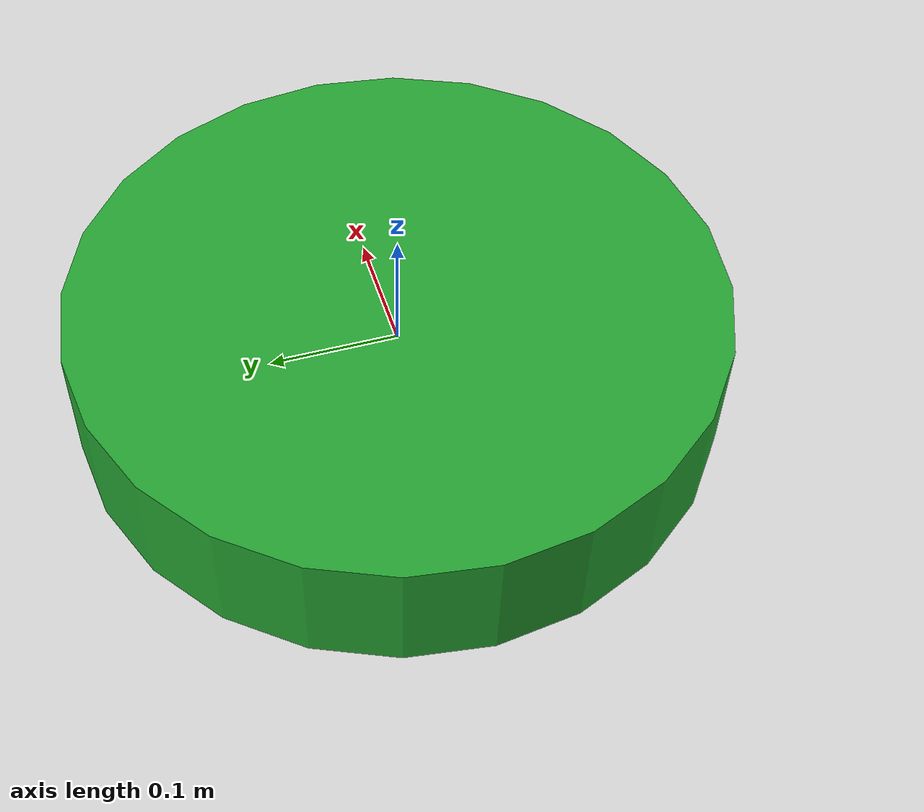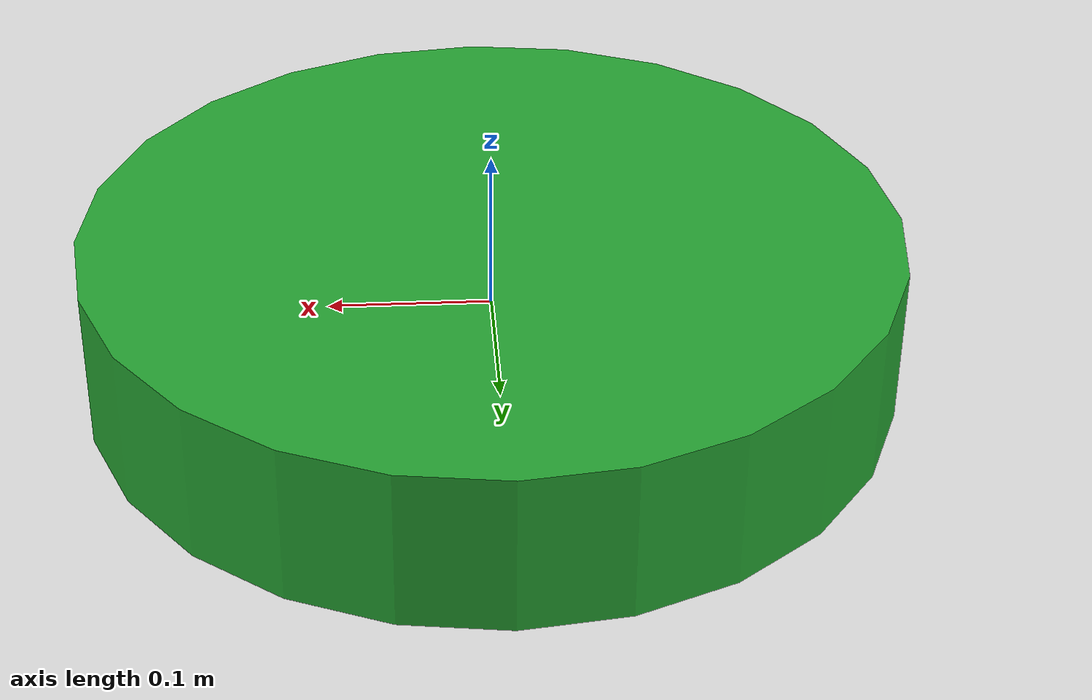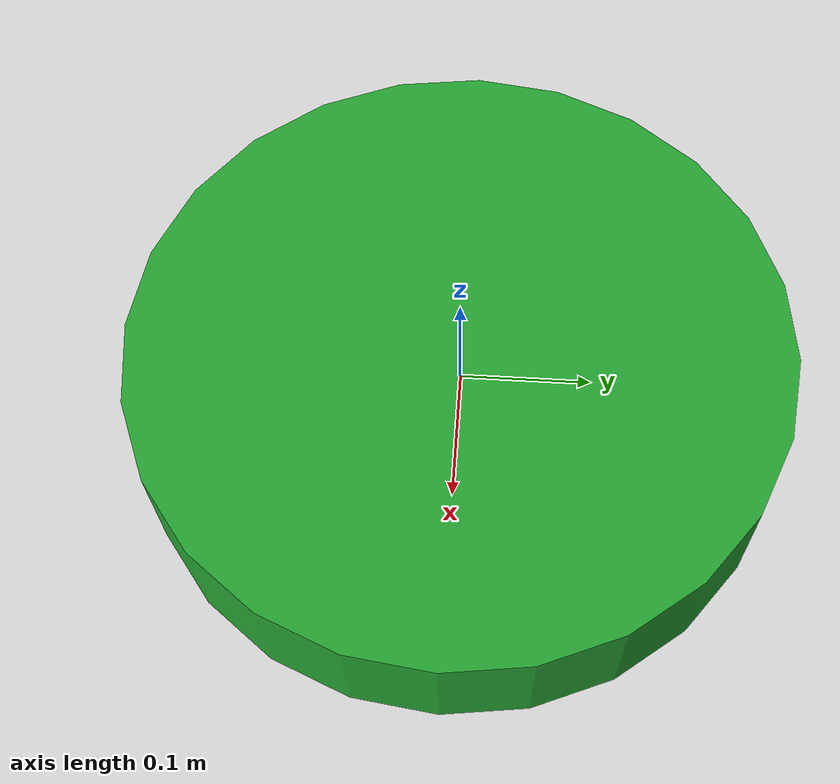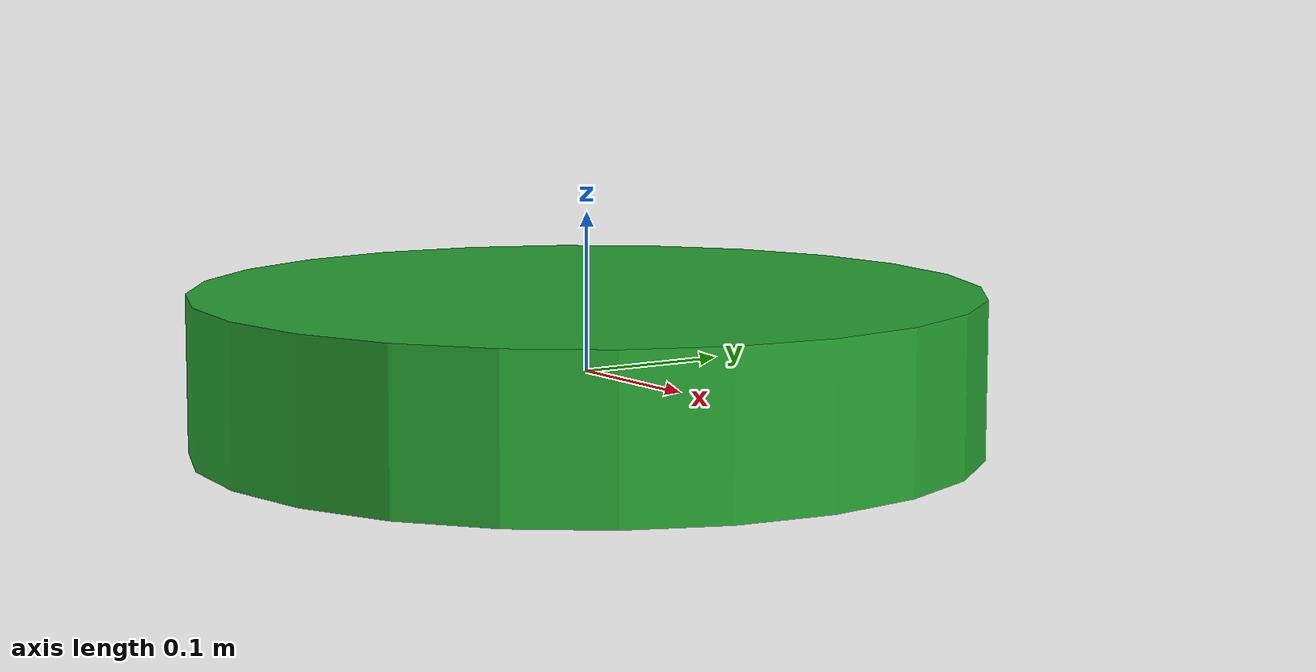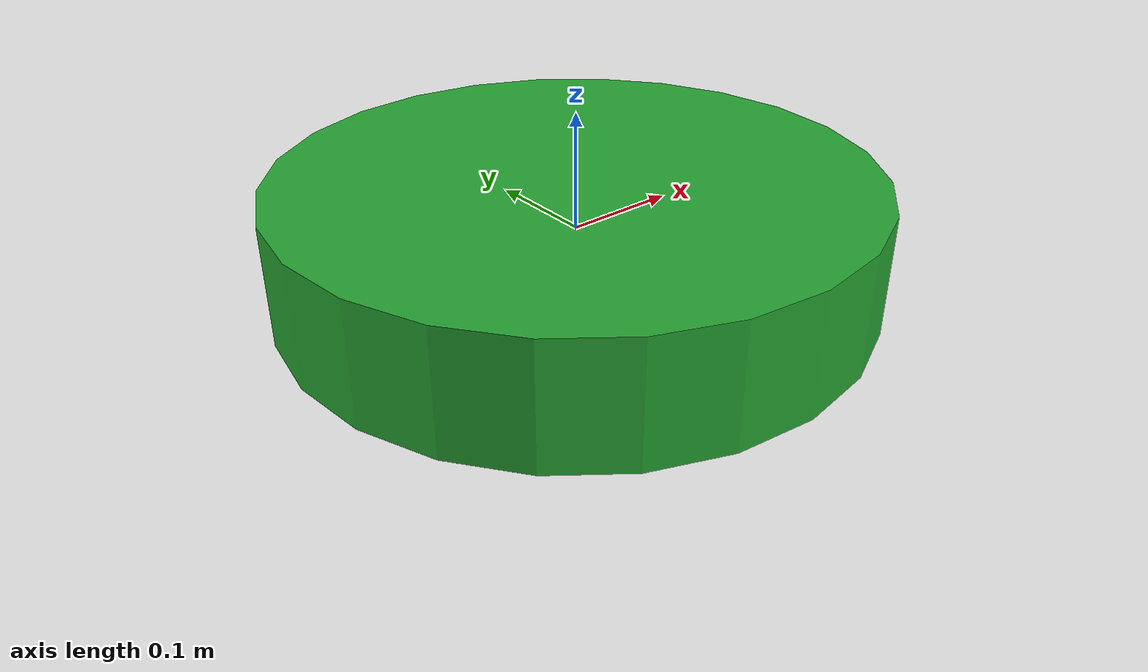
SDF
<?xml version="1.0"?>
<sdf version="1.6">
<model name="marker">
    <static>true</static>
    <link name="marker">

    <visual name="marker">
        <pose>0 0 0.001 0 0 0</pose>
        <geometry>
            <cylinder>
                <radius>0.25</radius>
                <length>0.10</length>
                </cylinder>
            </geometry>
            <material>
                <script>
                    <uri>file://media/materials/scripts/gazebo.material</uri>
                    <name>Gazebo/Green</name>
                </script>
            </material>
        </visual>

    </link>
    </model>
</sdf>
